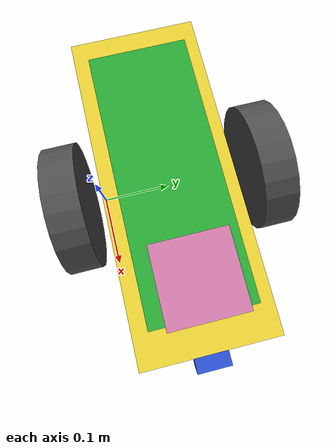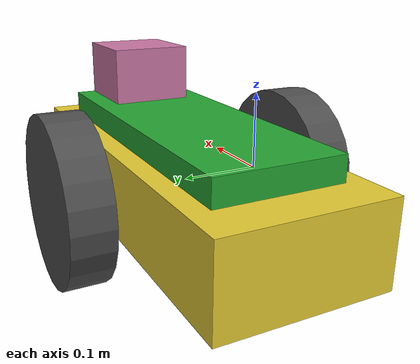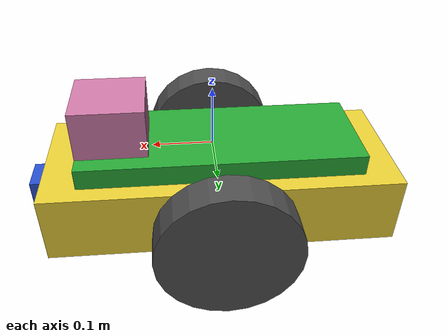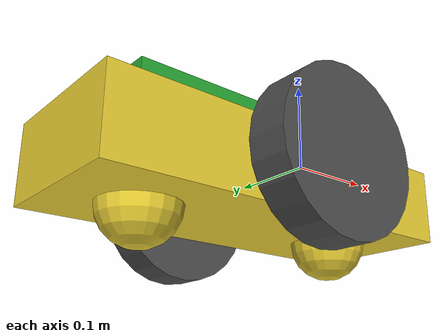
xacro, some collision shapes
<?xml version='1.0'?>

<robot name="my_robot" xmlns:xacro="http://www.ros.org/wiki/xacro">
  <xacro:include filename="$(find my_robot)/urdf/my_robot.gazebo" />

  <link name="robot_footprint"></link>

  <joint name="robot_footprint_joint" type="fixed">
    <origin xyz="0.0 0.1 0.0" rpy="0 0 0" />
    <parent link="robot_footprint"/>
    <child link="chassis" />
  </joint>

  <link name='chassis'>
    <pose>0 0 0.1 0 0 0</pose>

    <inertial>
      <mass value="15.0"/>
      <origin xyz="0.0 0 0" rpy=" 0 0 0"/>
      <inertia
          ixx="0.1" ixy="0" ixz="0"
          iyy="0.1" iyz="0"
          izz="0.1"
      />
    </inertial>

    <collision name='chassis_collision'>
      <origin xyz="0 0 0" rpy=" 0 0 0"/>
      <geometry>
        <box size=".5 .2 .1"/>
      </geometry>
    </collision>

    <visual name='chassis_visual'>
      <origin xyz="0 0 0" rpy=" 0 0 0"/>
      <geometry>
        <box size=".5 .2 .1"/>
      </geometry>
    </visual>

    <collision name='back_caster_collision'>
      <origin xyz="-0.15 0 -0.05" rpy=" 0 0 0"/>
      <geometry>
        <sphere radius="0.0499"/>
      </geometry>
    </collision>

    <visual name='back_caster_visual'>
      <origin xyz="-0.15 0 -0.05" rpy=" 0 0 0"/>
      <geometry>
        <sphere radius="0.05"/>
      </geometry>
    </visual>

    <collision name='front_caster_collision'>
      <origin xyz="0.15 0 -0.05" rpy=" 0 0 0"/>
      <geometry>
        <sphere radius="0.0499"/>
      </geometry>
    </collision>

    <visual name='front_caster_visual'>
      <origin xyz="0.15 0 -0.05" rpy=" 0 0 0"/>
      <geometry>
        <sphere radius="0.05"/>
      </geometry>
    </visual>

  </link>

  <link name="left_wheel">
    <collision name='left_wheel_collision'>
      <origin xyz="0 0 0" rpy="0 1.5707 1.5707"/>
      <geometry>
        <cylinder radius="0.1" length="0.05"/>
      </geometry>
    </collision>

    <visual name='left_wheel_visual'>
      <origin xyz="0 0 0" rpy="0 1.5707 1.5707"/>
      <geometry>
        <cylinder radius="0.1" length="0.05"/>
      </geometry>
    </visual>

    <inertial>
      <mass value="5.0"/>
      <origin xyz="0.0 0 0" rpy="0 1.5707 1.5707"/>
      <inertia
          ixx="0.1" ixy="0" ixz="0"
          iyy="0.1" iyz="0"
          izz="0.1"
      />
    </inertial>
  </link>

  <link name="robotop">
    <collision name='robotop_collision'>
      <origin xyz="0 0 0" rpy="0 0 0"/>
      <geometry>
        <box size=".4 .15 .04"/>
      </geometry>
    </collision>

    <visual name='robotop_visual'>
      <origin xyz="0 0 0" rpy="0 0 0"/>
      <geometry>
        <box size=".4 .15 .04"/>
      </geometry>
    </visual>

    <inertial>
      <mass value="3.0"/>
      <origin xyz="0.0 0 0" rpy="0 0 0"/>
      <inertia
          ixx="0.1" ixy="0" ixz="0"
          iyy="0.1" iyz="0"
          izz="0.1"
      />
    </inertial>
  </link>

  <joint type="fixed" name="robotop_joint">
    <origin xyz="0 0 0.06" rpy="0 0 0"/>
    <child link="robotop"/>
    <parent link="chassis"/>
    <axis xyz="0 1 0" rpy="0 0 0"/>
  </joint>

  <link name="right_wheel">
    <collision name='right_wheel_collision'>
      <origin xyz="0 0 0" rpy="0 1.5707 1.5707"/>
      <geometry>
        <cylinder radius="0.1" length="0.05"/>
      </geometry>
    </collision>

    <visual name='right_wheel_visual'>
      <origin xyz="0 0 0" rpy="0 1.5707 1.5707"/>
      <geometry>
        <cylinder radius="0.1" length="0.05"/>
      </geometry>
    </visual>

    <inertial>
      <mass value="5.0"/>
      <origin xyz="0.0 0 0" rpy="0 1.5707 1.5707"/>
      <inertia
          ixx="0.1" ixy="0" ixz="0"
          iyy="0.1" iyz="0"
          izz="0.1"
      />
    </inertial>
  </link>

  <joint type="continuous" name="left_wheel_hinge">
    <origin xyz="0 0.15 0" rpy="0 0 0"/>
    <child link="left_wheel"/>
    <parent link="chassis"/>
    <axis xyz="0 1 0" rpy="0 0 0"/>
    <limit effort="10000" velocity="1000"/>
    <dynamics damping="1.0" friction="1.0"/>
  </joint>

  <joint type="continuous" name="right_wheel_hinge">
    <origin xyz="0 -0.15 0" rpy="0 0 0"/>
    <child link="right_wheel"/>
    <parent link="chassis"/>
    <axis xyz="0 1 0" rpy="0 0 0"/>
    <limit effort="10000" velocity="1000"/>
    <dynamics damping="1.0" friction="1.0"/>
  </joint>

  <!-- ******* FRONT CAMERA ******* -->
  <link name="camera">
    <collision name='camera_collision'>
      <origin xyz="0 0 0" rpy="0 0 0"/>
      <geometry>
        <box size="0.05 0.05 0.05"/>
      </geometry>
    </collision>

    <visual name='camera_visual'>
      <origin xyz="0 0 0" rpy="0 0 0"/>
      <geometry>
        <box size="0.05 0.05 0.05"/>
      </geometry>
    </visual>

    <inertial>
      <mass value="0.1"/>
      <origin xyz="0.0 0 0" rpy="0 0 0"/>
      <inertia
          ixx="1e-6" ixy="0" ixz="0"
          iyy="1e-6" iyz="0"
          izz="1e-6"
      />
    </inertial>
  </link>

  <joint type="fixed" name="camera_joint">
    <origin xyz="0.25 0 0" rpy="0 0 0"/>
    <child link="camera"/>
    <parent link="chassis"/>
    <axis xyz="0 1 0" rpy="0 0 0"/>
  </joint>

  <!-- ******* LIDAR ******* -->
  <link name="hokuyo">
    <collision name='hokuyo_collision'>
      <origin xyz="0 0 0" rpy="0 0 0"/>
      <geometry>
        <box size="0.1 0.1 0.1"/>
      </geometry>
    </collision>

    <visual name='hokuyo_visual'>
      <origin xyz="0 0 0" rpy="0 0 0"/>
      <geometry>
        <mesh filename="package://my_robot/meshes/hokuyo.dae"/>
      </geometry>
    </visual>

    <inertial>
      <mass value="1e-5"/>
      <origin xyz="0.0 0 0" rpy="0 0 0"/>
      <inertia
          ixx="1e-6" ixy="0" ixz="0"
          iyy="1e-6" iyz="0"
          izz="1e-6"
      />
    </inertial>
  </link>

  <joint type="fixed" name="hokuyo_joint">
    <origin xyz="0.15 0 0.1" rpy="0 0 0"/>
    <child link="hokuyo"/>
    <parent link="chassis"/>
    <axis xyz="0 1 0" rpy="0 0 0"/>
  </joint>

<gazebo reference="left_wheel">
    <material>Gazebo/DarkGrey</material>
</gazebo>

<gazebo reference="right_wheel">
    <material>Gazebo/DarkGrey</material>
</gazebo>

<gazebo reference="chassis">
    <material>Gazebo/ZincYellow</material>
</gazebo>

<gazebo reference="robotop">
    <material>Gazebo/Green</material>
</gazebo>

<gazebo reference="camera">
    <material>Gazebo/Blue</material>
</gazebo>
</robot>
